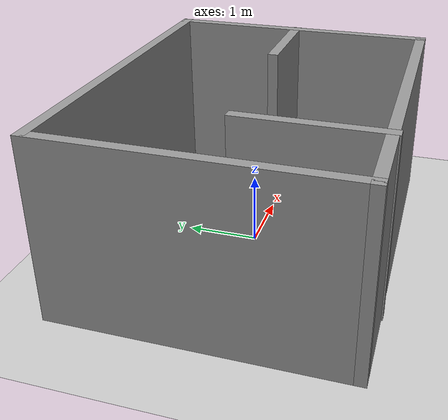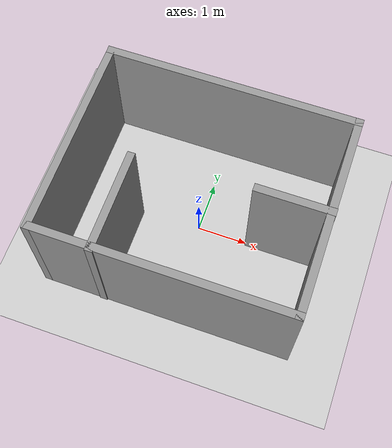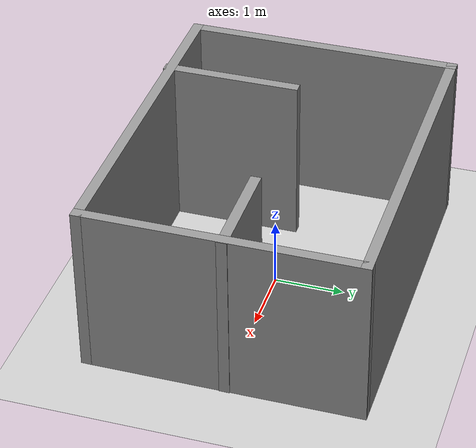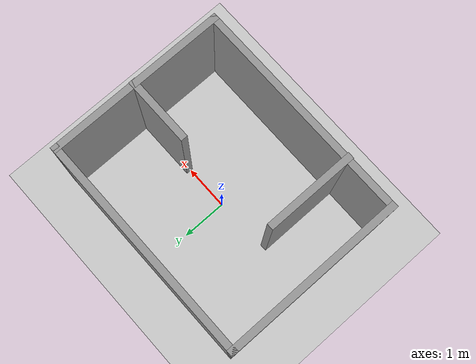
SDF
<sdf version="1.6">
 <world name="default">
  <model name="ground_plane">
   <static>1</static>
   <link name="link">
    <collision name="collision">
     <geometry><plane><normal>0 0 1</normal><size>100 100</size></plane></geometry>
     <surface><friction><ode><mu>100</mu><mu2>50</mu2></ode></friction></surface>
    </collision>
    <visual name="visual">
     <cast_shadows>0</cast_shadows>
     <geometry><plane><normal>0 0 1</normal><size>100 100</size></plane></geometry>
     <material>
      <script><uri>file://media/materials/scripts/gazebo.material</uri><name>Gazebo/Grey</name></script>
     </material>
    </visual>
   </link>
  </model>
  <gravity>0 0 -9.8</gravity>
  <magnetic_field>6e-06 2.3e-05 -4.2e-05</magnetic_field>
  <atmosphere type="adiabatic"/>
  <physics name="default_physics" default="0" type="ode">
   <max_step_size>0.001</max_step_size>
   <real_time_factor>1</real_time_factor>
   <real_time_update_rate>1000</real_time_update_rate>
  </physics>
  <scene><ambient>0.4 0.4 0.4 1</ambient><background>0.7 0.7 0.7 1</background><shadows>1</shadows></scene>
  <spherical_coordinates>
   <surface_model>EARTH_WGS84</surface_model>
   <latitude_deg>0</latitude_deg>
   <longitude_deg>0</longitude_deg>
   <elevation>0</elevation>
   <heading_deg>0</heading_deg>
  </spherical_coordinates>
  <model name="world3">
   <pose>-0.008319 -0.02565 0 0 -0 0</pose>
   <link name="Wall_0">
    <collision name="Wall_0_Collision">
     <geometry><box><size>5 0.15 2.5</size></box></geometry>
     <pose>0 0 1.25 0 -0 0</pose>
    </collision>
    <visual name="Wall_0_Visual">
     <pose>0 0 1.25 0 -0 0</pose>
     <geometry><box><size>5 0.15 2.5</size></box></geometry>
     <material>
      <script><uri>file://media/materials/scripts/gazebo.material</uri><name>Gazebo/Grey</name></script>
      <ambient>1 1 1 1</ambient>
     </material>
    </visual>
    <pose>-0.005 1.935 0 0 -0 0</pose>
   </link>
   <link name="Wall_1">
    <collision name="Wall_1_Collision">
     <geometry><box><size>4 0.15 2.5</size></box></geometry>
     <pose>0 0 1.25 0 -0 0</pose>
    </collision>
    <visual name="Wall_1_Visual">
     <pose>0 0 1.25 0 -0 0</pose>
     <geometry><box><size>4 0.15 2.5</size></box></geometry>
     <material>
      <script><uri>file://media/materials/scripts/gazebo.material</uri><name>Gazebo/Grey</name></script>
      <ambient>1 1 1 1</ambient>
     </material>
    </visual>
    <pose>2.42 0.01 0 0 0 -1.5708</pose>
   </link>
   <link name="Wall_2">
    <collision name="Wall_2_Collision">
     <geometry><box><size>5 0.15 2.5</size></box></geometry>
     <pose>0 0 1.25 0 -0 0</pose>
    </collision>
    <visual name="Wall_2_Visual">
     <pose>0 0 1.25 0 -0 0</pose>
     <geometry><box><size>5 0.15 2.5</size></box></geometry>
     <material>
      <script><uri>file://media/materials/scripts/gazebo.material</uri><name>Gazebo/Grey</name></script>
      <ambient>1 1 1 1</ambient>
     </material>
    </visual>
    <pose>-0.005 -1.915 0 0 -0 3.14159</pose>
   </link>
   <link name="Wall_3">
    <collision name="Wall_3_Collision">
     <geometry><box><size>4 0.15 2.5</size></box></geometry>
     <pose>0 0 1.25 0 -0 0</pose>
    </collision>
    <visual name="Wall_3_Visual">
     <pose>0 0 1.25 0 -0 0</pose>
     <geometry><box><size>4 0.15 2.5</size></box></geometry>
     <material>
      <script><uri>file://media/materials/scripts/gazebo.material</uri><name>Gazebo/Grey</name></script>
      <ambient>1 1 1 1</ambient>
     </material>
    </visual>
    <pose>-2.43 0.01 0 0 -0 1.5708</pose>
   </link>
   <link name="Wall_5">
    <collision name="Wall_5_Collision">
     <geometry><box><size>1.5 0.15 2.5</size></box></geometry>
     <pose>0 0 1.25 0 -0 0</pose>
    </collision>
    <visual name="Wall_5_Visual">
     <pose>0 0 1.25 0 -0 0</pose>
     <geometry><box><size>1.5 0.15 2.5</size></box></geometry>
     <material>
      <script><uri>file://media/materials/scripts/gazebo.material</uri><name>Gazebo/Grey</name></script>
      <ambient>1 1 1 1</ambient>
     </material>
    </visual>
    <pose>1.755 0.055 0 0 -0 3.14159</pose>
   </link>
   <link name="Wall_7">
    <collision name="Wall_7_Collision">
     <geometry><box><size>2 0.15 2.5</size></box></geometry>
     <pose>0 0 1.25 0 -0 0</pose>
    </collision>
    <visual name="Wall_7_Visual">
     <pose>0 0 1.25 0 -0 0</pose>
     <geometry><box><size>2 0.15 2.5</size></box></geometry>
     <material>
      <script><uri>file://media/materials/scripts/gazebo.material</uri><name>Gazebo/Grey</name></script>
      <ambient>1 1 1 1</ambient>
     </material>
    </visual>
    <pose>-1.25 -1.01 0 0 -0 1.5708</pose>
   </link>
   <static>1</static>
  </model>
 </world>
</sdf>
